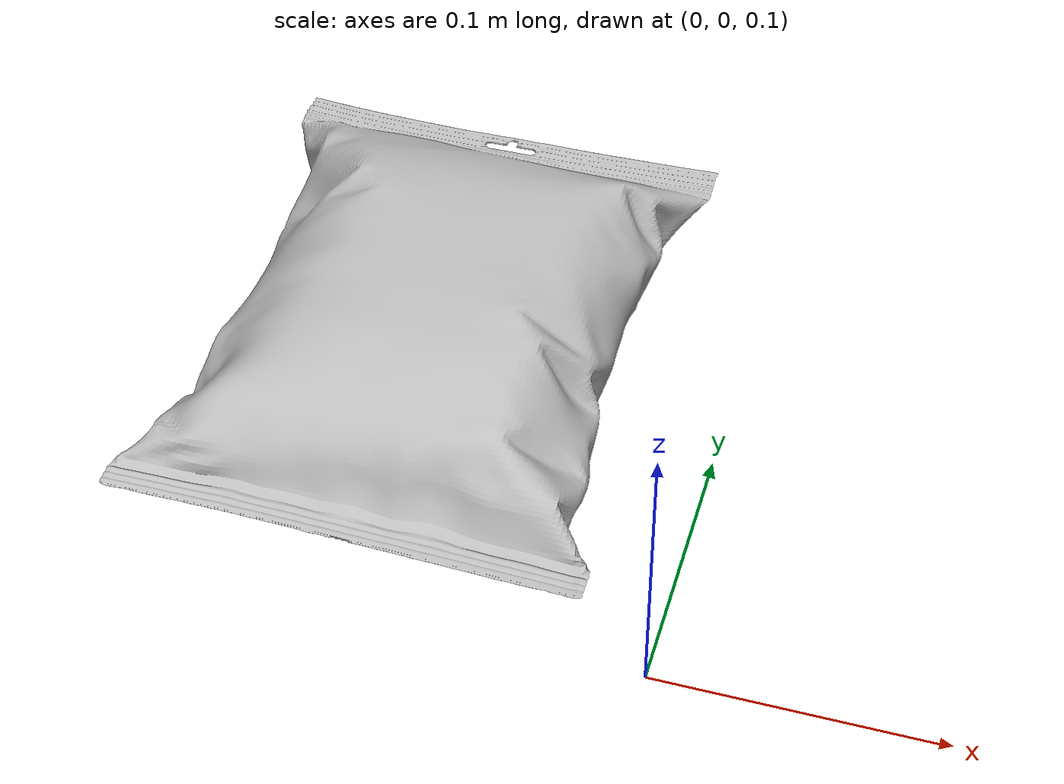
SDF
<?xml version='1.0'?>
<sdf version='1.4'>
  <model name="snackbag">
  <static>true</static>
    <link name='base_body'>
      <pose>0 0 .1 0 0 0</pose>
       <collision name='collision'>
        <geometry>
          <mesh>
            <uri>model://snackbag/meshes/snack.stl</uri>
            <scale>0.001 0.001 0.001</scale>
          </mesh>
        </geometry>
      </collision>
      <visual name='visual'>
        <geometry>
          <mesh>
            <uri>model://snackbag/meshes/snack.stl</uri>
            <scale>0.001 0.001 0.001</scale>
          </mesh>
        </geometry>
	<material>
          <script>
            <uri>model://snackbag/mat/mat.material</uri>
            <name>snackbag_mat</name>
          </script>
        </material>
      </visual>
    </link>
  </model>
</sdf>
